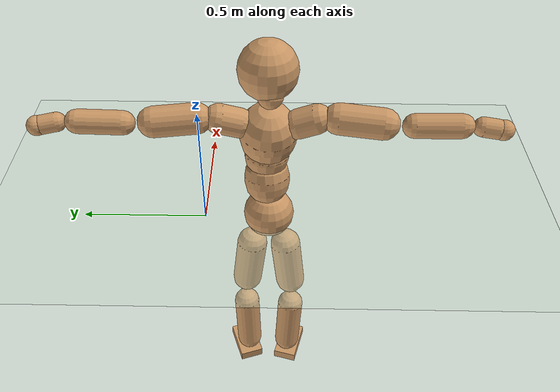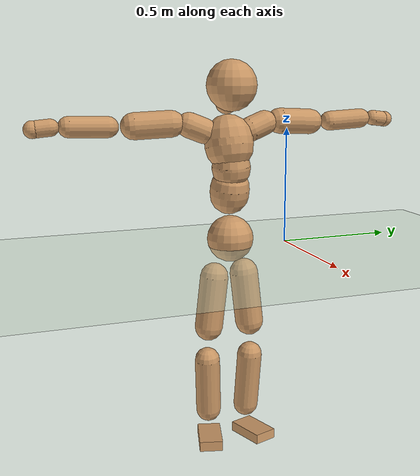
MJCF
<mujoco model="humanoid">
  <compiler coordinate="local"/>
  <default>
    <joint damping="0.0" armature="0.01" stiffness="0.0" limited="true"/>
    <geom conaffinity="1" condim="3" contype="7" margin="0.001" rgba="0.8 0.6 .4 1"/>
  </default>
  <asset>
    <texture type="skybox" builtin="gradient" rgb1=".4 .5 .6" rgb2="0 0 0" width="100" height="100"/>
    <texture builtin="flat" height="1278" mark="cross" markrgb="1 1 1" name="texgeom" random="0.01" rgb1="0.8 0.6 0.4" rgb2="0.8 0.6 0.4" type="cube" width="127"/>
    <texture builtin="checker" height="100" name="texplane" rgb1="0 0 0" rgb2="0.8 0.8 0.8" type="2d" width="100"/>
    <material name="MatPlane" reflectance="0.5" shininess="1" specular="1" texrepeat="60 60" texture="texplane"/>
    <material name="geom" texture="texgeom" texuniform="true"/>
  </asset>
  <worldbody>
    <light cutoff="100" diffuse="1 1 1" dir="-0 0 -1.3" directional="true" exponent="1" pos="0 0 1.3" specular=".1 .1 .1"/>
    <geom conaffinity="1" condim="3" name="floor" pos="0 0 0" rgba="0.8 0.9 0.8 1" size="100 100 .2" type="plane" material="MatPlane"/>
    <body name="Pelvis" pos="-0.0012 -0.2591 0.0316">
      <freejoint name="Pelvis"/>
      <geom type="sphere" contype="1" conaffinity="1" density="500" size="0.1009" pos="0.0000 0.0000 0.0000" name="Pelvis"/>
      <body name="L_Hip" pos="-0.0151 0.0606 -0.085">
        <joint name="L_Hip_x" type="hinge" pos="0 0 0" axis="1 0 0" stiffness="800" damping="80" armature="0.02" range="-180.0000 180.0000"/>
        <joint name="L_Hip_y" type="hinge" pos="0 0 0" axis="0 1 0" stiffness="800" damping="80" armature="0.02" range="-180.0000 180.0000"/>
        <joint name="L_Hip_z" type="hinge" pos="0 0 0" axis="0 0 1" stiffness="800" damping="80" armature="0.02" range="-180.0000 180.0000"/>
        <geom type="capsule" contype="1" conaffinity="1" density="500" fromto="0.0017 0.0085 -0.0770 0.0068 0.0341 -0.3079" size="0.0624" name="L_Hip"/>
        <body name="L_Knee" pos="0.0085 0.0426 -0.3849">
          <joint name="L_Knee_x" type="hinge" pos="0 0 0" axis="1 0 0" stiffness="800" damping="80" armature="0.02" range="-180.0000 180.0000"/>
          <joint name="L_Knee_y" type="hinge" pos="0 0 0" axis="0 1 0" stiffness="800" damping="80" armature="0.02" range="-180.0000 180.0000"/>
          <joint name="L_Knee_z" type="hinge" pos="0 0 0" axis="0 0 1" stiffness="800" damping="80" armature="0.02" range="-180.0000 180.0000"/>
          <geom type="capsule" contype="1" conaffinity="1" density="500" fromto="-0.0077 -0.0030 -0.0852 -0.0309 -0.0120 -0.3406" size="0.0559" name="L_Knee"/>
          <body name="L_Ankle" pos="-0.0386 -0.015 -0.4258">
            <joint name="L_Ankle_x" type="hinge" pos="0 0 0" axis="1 0 0" stiffness="800" damping="80" armature="0.02" range="-180.0000 180.0000"/>
            <joint name="L_Ankle_y" type="hinge" pos="0 0 0" axis="0 1 0" stiffness="800" damping="80" armature="0.02" range="-180.0000 180.0000"/>
            <joint name="L_Ankle_z" type="hinge" pos="0 0 0" axis="0 0 1" stiffness="800" damping="80" armature="0.02" range="-180.0000 180.0000"/>
            <geom type="box" contype="1" conaffinity="1" density="500" pos="0.0615 0.0209 -0.0304" size="0.0887 0.0528 0.0221" quat="0.9866 0.0000 0.0000 0.1629" name="L_Ankle"/>
            <body name="L_Toe" pos="0.1231 0.0418 -0.0607">
              <joint name="L_Toe_x" type="hinge" pos="0 0 0" axis="1 0 0" stiffness="500" damping="50" armature="0.02" range="-180.0000 180.0000"/>
              <joint name="L_Toe_y" type="hinge" pos="0 0 0" axis="0 1 0" stiffness="500" damping="50" armature="0.02" range="-180.0000 180.0000"/>
              <joint name="L_Toe_z" type="hinge" pos="0 0 0" axis="0 0 1" stiffness="500" damping="50" armature="0.02" range="-180.0000 180.0000"/>
              <geom type="box" contype="1" conaffinity="1" density="500" pos="0.0000 0.0000 0.0301" size="0.0011 0.0025 0.0011" quat="0.9859 0.0000 0.0000 0.1676" name="L_Toe"/>
            </body>
          </body>
        </body>
      </body>
      <body name="R_Hip" pos="-0.0111 -0.0619 -0.0934">
        <joint name="R_Hip_x" type="hinge" pos="0 0 0" axis="1 0 0" stiffness="800" damping="80" armature="0.02" range="-180.0000 180.0000"/>
        <joint name="R_Hip_y" type="hinge" pos="0 0 0" axis="0 1 0" stiffness="800" damping="80" armature="0.02" range="-180.0000 180.0000"/>
        <joint name="R_Hip_z" type="hinge" pos="0 0 0" axis="0 0 1" stiffness="800" damping="80" armature="0.02" range="-180.0000 180.0000"/>
        <geom type="capsule" contype="1" conaffinity="1" density="500" fromto="-0.0007 -0.0087 -0.0766 -0.0029 -0.0348 -0.3065" size="0.062" name="R_Hip"/>
        <body name="R_Knee" pos="-0.0036 -0.0435 -0.3831">
          <joint name="R_Knee_x" type="hinge" pos="0 0 0" axis="1 0 0" stiffness="800" damping="80" armature="0.02" range="-180.0000 180.0000"/>
          <joint name="R_Knee_y" type="hinge" pos="0 0 0" axis="0 1 0" stiffness="800" damping="80" armature="0.02" range="-180.0000 180.0000"/>
          <joint name="R_Knee_z" type="hinge" pos="0 0 0" axis="0 0 1" stiffness="800" damping="80" armature="0.02" range="-180.0000 180.0000"/>
          <geom type="capsule" contype="1" conaffinity="1" density="500" fromto="-0.0071 0.0038 -0.0839 -0.0285 0.0152 -0.3357" size="0.0561" name="R_Knee"/>
          <body name="R_Ankle" pos="-0.0357 0.019 -0.4197">
            <joint name="R_Ankle_x" type="hinge" pos="0 0 0" axis="1 0 0" stiffness="800" damping="80" armature="0.02" range="-180.0000 180.0000"/>
            <joint name="R_Ankle_y" type="hinge" pos="0 0 0" axis="0 1 0" stiffness="800" damping="80" armature="0.02" range="-180.0000 180.0000"/>
            <joint name="R_Ankle_z" type="hinge" pos="0 0 0" axis="0 0 1" stiffness="800" damping="80" armature="0.02" range="-180.0000 180.0000"/>
            <geom type="box" contype="1" conaffinity="1" density="500" pos="0.0656 -0.0175 -0.0313" size="0.0912 0.0514 0.0224" quat="0.9915 0.0000 0.0000 -0.1298" name="R_Ankle"/>
            <body name="R_Toe" pos="0.1311 -0.0349 -0.0626">
              <joint name="R_Toe_x" type="hinge" pos="0 0 0" axis="1 0 0" stiffness="500" damping="50" armature="0.02" range="-180.0000 180.0000"/>
              <joint name="R_Toe_y" type="hinge" pos="0 0 0" axis="0 1 0" stiffness="500" damping="50" armature="0.02" range="-180.0000 180.0000"/>
              <joint name="R_Toe_z" type="hinge" pos="0 0 0" axis="0 0 1" stiffness="500" damping="50" armature="0.02" range="-180.0000 180.0000"/>
              <geom type="box" contype="1" conaffinity="1" density="500" pos="0.0000 0.0000 0.0316" size="0.0011 0.0025 0.0011" quat="0.9927 0.0000 0.0000 -0.1209" name="R_Toe"/>
            </body>
          </body>
        </body>
      </body>
      <body name="Torso" pos="-0.0417 0.0044 0.1307">
        <joint name="Torso_x" type="hinge" pos="0 0 0" axis="1 0 0" stiffness="1000" damping="100" armature="0.02" range="-180.0000 180.0000"/>
        <joint name="Torso_y" type="hinge" pos="0 0 0" axis="0 1 0" stiffness="1000" damping="100" armature="0.02" range="-180.0000 180.0000"/>
        <joint name="Torso_z" type="hinge" pos="0 0 0" axis="0 0 1" stiffness="1000" damping="100" armature="0.02" range="-180.0000 180.0000"/>
        <geom type="capsule" contype="1" conaffinity="1" density="500" fromto="0.0171 0.0031 0.0875 0.0114 0.0021 0.0583" size="0.0856" name="Torso"/>
        <body name="Spine" pos="0.0285 0.0052 0.1458">
          <joint name="Spine_x" type="hinge" pos="0 0 0" axis="1 0 0" stiffness="1000" damping="100" armature="0.02" range="-180.0000 180.0000"/>
          <joint name="Spine_y" type="hinge" pos="0 0 0" axis="0 1 0" stiffness="1000" damping="100" armature="0.02" range="-180.0000 180.0000"/>
          <joint name="Spine_z" type="hinge" pos="0 0 0" axis="0 0 1" stiffness="1000" damping="100" armature="0.02" range="-180.0000 180.0000"/>
          <geom type="capsule" contype="1" conaffinity="1" density="500" fromto="0.0017 -0.0017 0.0357 0.0011 -0.0011 0.0238" size="0.0834" name="Spine"/>
          <body name="Chest" pos="0.0028 -0.0028 0.0595">
            <joint name="Chest_x" type="hinge" pos="0 0 0" axis="1 0 0" stiffness="1000" damping="100" armature="0.02" range="-180.0000 180.0000"/>
            <joint name="Chest_y" type="hinge" pos="0 0 0" axis="0 1 0" stiffness="1000" damping="100" armature="0.02" range="-180.0000 180.0000"/>
            <joint name="Chest_z" type="hinge" pos="0 0 0" axis="0 0 1" stiffness="1000" damping="100" armature="0.02" range="-180.0000 180.0000"/>
            <geom type="capsule" contype="1" conaffinity="1" density="500" fromto="-0.0182 -0.0050 0.0918 -0.0121 -0.0034 0.0612" size="0.105" name="Chest"/>
            <body name="Neck" pos="-0.0397 -0.0127 0.223">
              <joint name="Neck_x" type="hinge" pos="0 0 0" axis="1 0 0" stiffness="500" damping="50" armature="0.02" range="-180.0000 180.0000"/>
              <joint name="Neck_y" type="hinge" pos="0 0 0" axis="0 1 0" stiffness="500" damping="50" armature="0.02" range="-180.0000 180.0000"/>
              <joint name="Neck_z" type="hinge" pos="0 0 0" axis="0 0 1" stiffness="500" damping="50" armature="0.02" range="-180.0000 180.0000"/>
              <geom type="capsule" contype="1" conaffinity="1" density="500" fromto="0.0109 0.0020 0.0185 0.0435 0.0081 0.0739" size="0.0467" name="Neck"/>
              <body name="Head" pos="0.0544 0.0102 0.0924">
                <joint name="Head_x" type="hinge" pos="0 0 0" axis="1 0 0" stiffness="500" damping="50" armature="0.02" range="-180.0000 180.0000"/>
                <joint name="Head_y" type="hinge" pos="0 0 0" axis="0 1 0" stiffness="500" damping="50" armature="0.02" range="-180.0000 180.0000"/>
                <joint name="Head_z" type="hinge" pos="0 0 0" axis="0 0 1" stiffness="500" damping="50" armature="0.02" range="-180.0000 180.0000"/>
                <geom type="sphere" contype="1" conaffinity="1" density="500" size="0.1072" pos="0.0000 0.0000 0.0000" name="Head"/>
              </body>
            </body>
            <body name="L_Thorax" pos="-0.0236 0.0713 0.1186">
              <joint name="L_Thorax_x" type="hinge" pos="0 0 0" axis="1 0 0" stiffness="500" damping="50" armature="0.02" range="-180.0000 180.0000"/>
              <joint name="L_Thorax_y" type="hinge" pos="0 0 0" axis="0 1 0" stiffness="500" damping="50" armature="0.02" range="-180.0000 180.0000"/>
              <joint name="L_Thorax_z" type="hinge" pos="0 0 0" axis="0 0 1" stiffness="500" damping="50" armature="0.02" range="-180.0000 180.0000"/>
              <geom type="capsule" contype="1" conaffinity="1" density="500" fromto="-0.0039 0.0244 0.0088 -0.0158 0.0976 0.0351" size="0.0536" name="L_Thorax"/>
              <body name="L_Shoulder" pos="-0.0197 0.122 0.0438">
                <joint name="L_Shoulder_x" type="hinge" pos="0 0 0" axis="1 0 0" stiffness="500" damping="50" armature="0.02" range="-720.0000 720.0000"/>
                <joint name="L_Shoulder_y" type="hinge" pos="0 0 0" axis="0 1 0" stiffness="500" damping="50" armature="0.02" range="-720.0000 720.0000"/>
                <joint name="L_Shoulder_z" type="hinge" pos="0 0 0" axis="0 0 1" stiffness="500" damping="50" armature="0.02" range="-720.0000 720.0000"/>
                <geom type="capsule" contype="1" conaffinity="1" density="500" fromto="-0.0044 0.0506 -0.0027 -0.0175 0.2022 -0.0107" size="0.0554" name="L_Shoulder"/>
                <body name="L_Elbow" pos="-0.0219 0.2528 -0.0134">
                  <joint name="L_Elbow_x" type="hinge" pos="0 0 0" axis="1 0 0" stiffness="500" damping="50" armature="0.02" range="-720.0000 720.0000"/>
                  <joint name="L_Elbow_y" type="hinge" pos="0 0 0" axis="0 1 0" stiffness="500" damping="50" armature="0.02" range="-720.0000 720.0000"/>
                  <joint name="L_Elbow_z" type="hinge" pos="0 0 0" axis="0 0 1" stiffness="500" damping="50" armature="0.02" range="-720.0000 720.0000"/>
                  <geom type="capsule" contype="1" conaffinity="1" density="500" fromto="-0.0016 0.0523 0.0024 -0.0063 0.2093 0.0098" size="0.0431" name="L_Elbow"/>
                  <body name="L_Wrist" pos="-0.0078 0.2616 0.0122">
                    <joint name="L_Wrist_x" type="hinge" pos="0 0 0" axis="1 0 0" stiffness="300" damping="30" armature="0.02" range="-180.0000 180.0000"/>
                    <joint name="L_Wrist_y" type="hinge" pos="0 0 0" axis="0 1 0" stiffness="300" damping="30" armature="0.02" range="-180.0000 180.0000"/>
                    <joint name="L_Wrist_z" type="hinge" pos="0 0 0" axis="0 0 1" stiffness="300" damping="30" armature="0.02" range="-180.0000 180.0000"/>
                    <geom type="capsule" contype="1" conaffinity="1" density="500" fromto="-0.0030 0.0171 -0.0021 -0.0122 0.0684 -0.0084" size="0.0341" name="L_Wrist"/>
                    <body name="L_Hand" pos="-0.0152 0.0856 -0.0104">
                      <joint name="L_Hand_x" type="hinge" pos="0 0 0" axis="1 0 0" stiffness="300" damping="30" armature="0.02" range="-180.0000 180.0000"/>
                      <joint name="L_Hand_y" type="hinge" pos="0 0 0" axis="0 1 0" stiffness="300" damping="30" armature="0.02" range="-180.0000 180.0000"/>
                      <joint name="L_Hand_z" type="hinge" pos="0 0 0" axis="0 0 1" stiffness="300" damping="30" armature="0.02" range="-180.0000 180.0000"/>
                      <geom type="sphere" contype="1" conaffinity="1" density="500" size="0.0352" pos="0.0000 0.0000 0.0000" name="L_Hand"/>
                    </body>
                  </body>
                </body>
              </body>
            </body>
            <body name="R_Thorax" pos="-0.0276 -0.0838 0.1174">
              <joint name="R_Thorax_x" type="hinge" pos="0 0 0" axis="1 0 0" stiffness="500" damping="50" armature="0.02" range="-180.0000 180.0000"/>
              <joint name="R_Thorax_y" type="hinge" pos="0 0 0" axis="0 1 0" stiffness="500" damping="50" armature="0.02" range="-180.0000 180.0000"/>
              <joint name="R_Thorax_z" type="hinge" pos="0 0 0" axis="0 0 1" stiffness="500" damping="50" armature="0.02" range="-180.0000 180.0000"/>
              <geom type="capsule" contype="1" conaffinity="1" density="500" fromto="-0.0018 -0.0228 0.0090 -0.0072 -0.0910 0.0362" size="0.0539" name="R_Thorax"/>
              <body name="R_Shoulder" pos="-0.009 -0.1138 0.0452">
                <joint name="R_Shoulder_x" type="hinge" pos="0 0 0" axis="1 0 0" stiffness="500" damping="50" armature="0.02" range="-720.0000 720.0000"/>
                <joint name="R_Shoulder_y" type="hinge" pos="0 0 0" axis="0 1 0" stiffness="500" damping="50" armature="0.02" range="-720.0000 720.0000"/>
                <joint name="R_Shoulder_z" type="hinge" pos="0 0 0" axis="0 0 1" stiffness="500" damping="50" armature="0.02" range="-720.0000 720.0000"/>
                <geom type="capsule" contype="1" conaffinity="1" density="500" fromto="-0.0060 -0.0518 -0.0024 -0.0239 -0.2072 -0.0095" size="0.0563" name="R_Shoulder"/>
                <body name="R_Elbow" pos="-0.0298 -0.259 -0.0119">
                  <joint name="R_Elbow_x" type="hinge" pos="0 0 0" axis="1 0 0" stiffness="500" damping="50" armature="0.02" range="-720.0000 720.0000"/>
                  <joint name="R_Elbow_y" type="hinge" pos="0 0 0" axis="0 1 0" stiffness="500" damping="50" armature="0.02" range="-720.0000 720.0000"/>
                  <joint name="R_Elbow_z" type="hinge" pos="0 0 0" axis="0 0 1" stiffness="500" damping="50" armature="0.02" range="-720.0000 720.0000"/>
                  <geom type="capsule" contype="1" conaffinity="1" density="500" fromto="-0.0014 -0.0533 0.0015 -0.0054 -0.2131 0.0058" size="0.0439" name="R_Elbow"/>
                  <body name="R_Wrist" pos="-0.0068 -0.2664 0.0073">
                    <joint name="R_Wrist_x" type="hinge" pos="0 0 0" axis="1 0 0" stiffness="300" damping="30" armature="0.02" range="-180.0000 180.0000"/>
                    <joint name="R_Wrist_y" type="hinge" pos="0 0 0" axis="0 1 0" stiffness="300" damping="30" armature="0.02" range="-180.0000 180.0000"/>
                    <joint name="R_Wrist_z" type="hinge" pos="0 0 0" axis="0 0 1" stiffness="300" damping="30" armature="0.02" range="-180.0000 180.0000"/>
                    <geom type="capsule" contype="1" conaffinity="1" density="500" fromto="-0.0020 -0.0177 -0.0017 -0.0079 -0.0710 -0.0068" size="0.0351" name="R_Wrist"/>
                    <body name="R_Hand" pos="-0.0098 -0.0887 -0.0085">
                      <joint name="R_Hand_x" type="hinge" pos="0 0 0" axis="1 0 0" stiffness="300" damping="30" armature="0.02" range="-180.0000 180.0000"/>
                      <joint name="R_Hand_y" type="hinge" pos="0 0 0" axis="0 1 0" stiffness="300" damping="30" armature="0.02" range="-180.0000 180.0000"/>
                      <joint name="R_Hand_z" type="hinge" pos="0 0 0" axis="0 0 1" stiffness="300" damping="30" armature="0.02" range="-180.0000 180.0000"/>
                      <geom type="sphere" contype="1" conaffinity="1" density="500" size="0.0362" pos="0.0000 0.0000 0.0000" name="R_Hand"/>
                    </body>
                  </body>
                </body>
              </body>
            </body>
          </body>
        </body>
      </body>
    </body>
  </worldbody>
  <actuator>
    <motor name="L_Hip_x" joint="L_Hip_x" gear="500"/>
    <motor name="L_Hip_y" joint="L_Hip_y" gear="500"/>
    <motor name="L_Hip_z" joint="L_Hip_z" gear="500"/>
    <motor name="L_Knee_x" joint="L_Knee_x" gear="500"/>
    <motor name="L_Knee_y" joint="L_Knee_y" gear="500"/>
    <motor name="L_Knee_z" joint="L_Knee_z" gear="500"/>
    <motor name="L_Ankle_x" joint="L_Ankle_x" gear="500"/>
    <motor name="L_Ankle_y" joint="L_Ankle_y" gear="500"/>
    <motor name="L_Ankle_z" joint="L_Ankle_z" gear="500"/>
    <motor name="L_Toe_x" joint="L_Toe_x" gear="500"/>
    <motor name="L_Toe_y" joint="L_Toe_y" gear="500"/>
    <motor name="L_Toe_z" joint="L_Toe_z" gear="500"/>
    <motor name="R_Hip_x" joint="R_Hip_x" gear="500"/>
    <motor name="R_Hip_y" joint="R_Hip_y" gear="500"/>
    <motor name="R_Hip_z" joint="R_Hip_z" gear="500"/>
    <motor name="R_Knee_x" joint="R_Knee_x" gear="500"/>
    <motor name="R_Knee_y" joint="R_Knee_y" gear="500"/>
    <motor name="R_Knee_z" joint="R_Knee_z" gear="500"/>
    <motor name="R_Ankle_x" joint="R_Ankle_x" gear="500"/>
    <motor name="R_Ankle_y" joint="R_Ankle_y" gear="500"/>
    <motor name="R_Ankle_z" joint="R_Ankle_z" gear="500"/>
    <motor name="R_Toe_x" joint="R_Toe_x" gear="500"/>
    <motor name="R_Toe_y" joint="R_Toe_y" gear="500"/>
    <motor name="R_Toe_z" joint="R_Toe_z" gear="500"/>
    <motor name="Torso_x" joint="Torso_x" gear="500"/>
    <motor name="Torso_y" joint="Torso_y" gear="500"/>
    <motor name="Torso_z" joint="Torso_z" gear="500"/>
    <motor name="Spine_x" joint="Spine_x" gear="500"/>
    <motor name="Spine_y" joint="Spine_y" gear="500"/>
    <motor name="Spine_z" joint="Spine_z" gear="500"/>
    <motor name="Chest_x" joint="Chest_x" gear="500"/>
    <motor name="Chest_y" joint="Chest_y" gear="500"/>
    <motor name="Chest_z" joint="Chest_z" gear="500"/>
    <motor name="Neck_x" joint="Neck_x" gear="500"/>
    <motor name="Neck_y" joint="Neck_y" gear="500"/>
    <motor name="Neck_z" joint="Neck_z" gear="500"/>
    <motor name="Head_x" joint="Head_x" gear="500"/>
    <motor name="Head_y" joint="Head_y" gear="500"/>
    <motor name="Head_z" joint="Head_z" gear="500"/>
    <motor name="L_Thorax_x" joint="L_Thorax_x" gear="500"/>
    <motor name="L_Thorax_y" joint="L_Thorax_y" gear="500"/>
    <motor name="L_Thorax_z" joint="L_Thorax_z" gear="500"/>
    <motor name="L_Shoulder_x" joint="L_Shoulder_x" gear="500"/>
    <motor name="L_Shoulder_y" joint="L_Shoulder_y" gear="500"/>
    <motor name="L_Shoulder_z" joint="L_Shoulder_z" gear="500"/>
    <motor name="L_Elbow_x" joint="L_Elbow_x" gear="500"/>
    <motor name="L_Elbow_y" joint="L_Elbow_y" gear="500"/>
    <motor name="L_Elbow_z" joint="L_Elbow_z" gear="500"/>
    <motor name="L_Wrist_x" joint="L_Wrist_x" gear="500"/>
    <motor name="L_Wrist_y" joint="L_Wrist_y" gear="500"/>
    <motor name="L_Wrist_z" joint="L_Wrist_z" gear="500"/>
    <motor name="L_Hand_x" joint="L_Hand_x" gear="500"/>
    <motor name="L_Hand_y" joint="L_Hand_y" gear="500"/>
    <motor name="L_Hand_z" joint="L_Hand_z" gear="500"/>
    <motor name="R_Thorax_x" joint="R_Thorax_x" gear="500"/>
    <motor name="R_Thorax_y" joint="R_Thorax_y" gear="500"/>
    <motor name="R_Thorax_z" joint="R_Thorax_z" gear="500"/>
    <motor name="R_Shoulder_x" joint="R_Shoulder_x" gear="500"/>
    <motor name="R_Shoulder_y" joint="R_Shoulder_y" gear="500"/>
    <motor name="R_Shoulder_z" joint="R_Shoulder_z" gear="500"/>
    <motor name="R_Elbow_x" joint="R_Elbow_x" gear="500"/>
    <motor name="R_Elbow_y" joint="R_Elbow_y" gear="500"/>
    <motor name="R_Elbow_z" joint="R_Elbow_z" gear="500"/>
    <motor name="R_Wrist_x" joint="R_Wrist_x" gear="500"/>
    <motor name="R_Wrist_y" joint="R_Wrist_y" gear="500"/>
    <motor name="R_Wrist_z" joint="R_Wrist_z" gear="500"/>
    <motor name="R_Hand_x" joint="R_Hand_x" gear="500"/>
    <motor name="R_Hand_y" joint="R_Hand_y" gear="500"/>
    <motor name="R_Hand_z" joint="R_Hand_z" gear="500"/>
  </actuator>
  <contact>
    <exclude body1="Torso" body2="Chest"/>
    <exclude body1="Head" body2="Chest"/>
    <exclude body1="R_Knee" body2="R_Toe"/>
    <exclude body1="R_Knee" body2="L_Ankle"/>
    <exclude body1="R_Knee" body2="L_Toe"/>
    <exclude body1="L_Knee" body2="L_Toe"/>
    <exclude body1="L_Knee" body2="R_Ankle"/>
    <exclude body1="L_Knee" body2="R_Toe"/>
    <exclude body1="L_Shoulder" body2="Chest"/>
    <exclude body1="R_Shoulder" body2="Chest"/>
  </contact>
  <sensor/>
  <size njmax="700" nconmax="700"/>
</mujoco>
